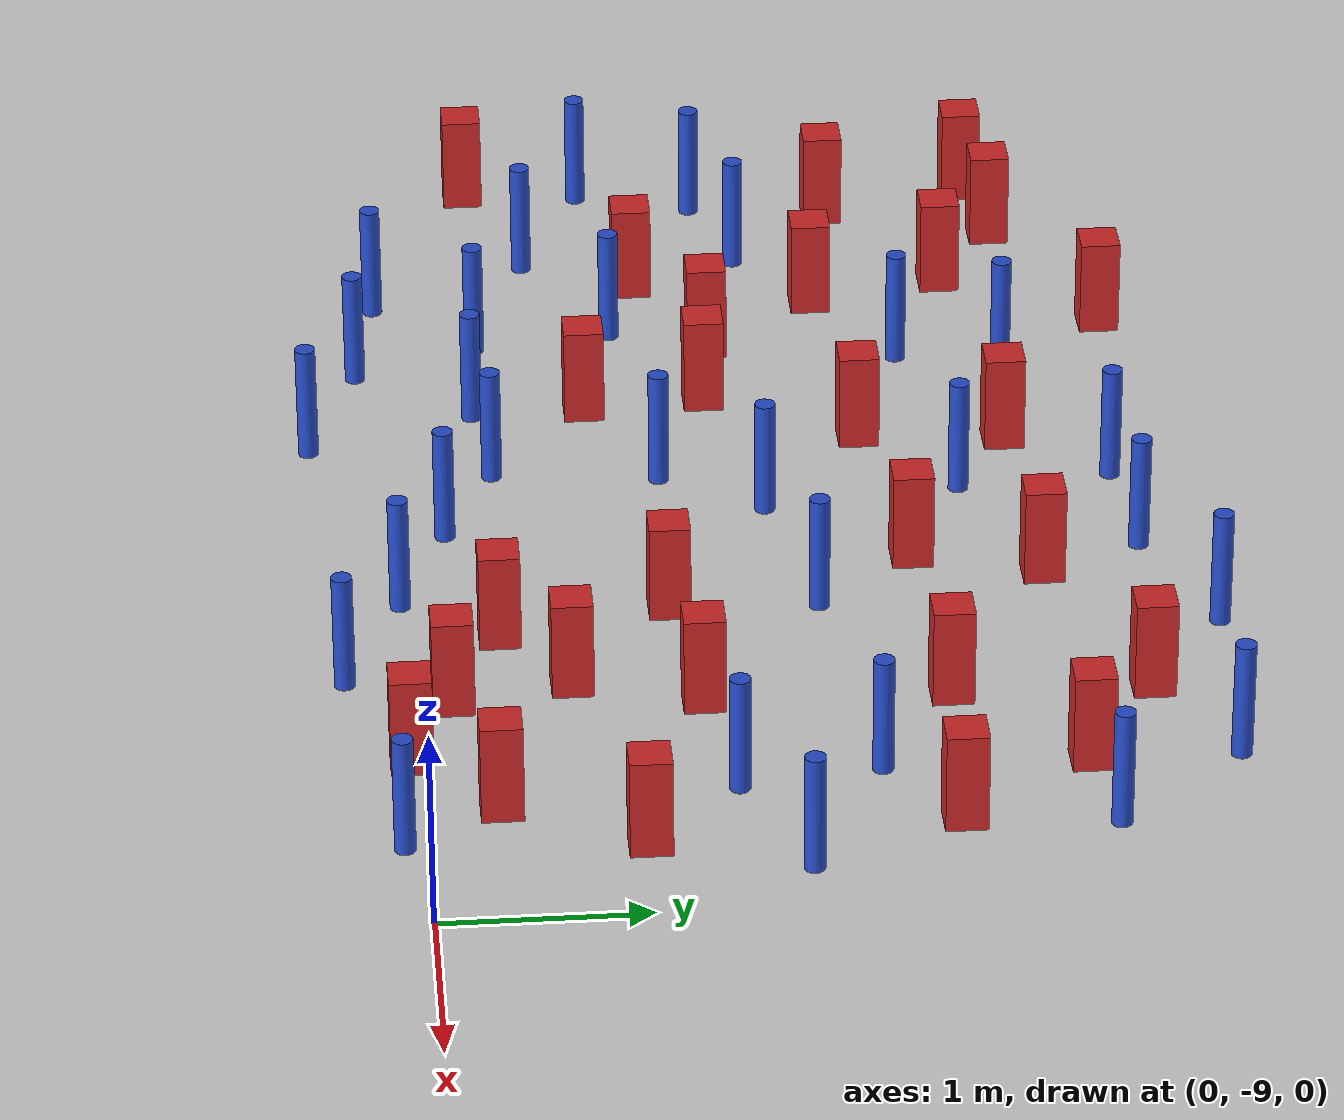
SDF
<sdf version="1.6">
 <world name="default">
  <model name="ground_plane">
   <static>1</static>
   <link name="link">
    <collision name="collision">
     <geometry><plane><normal>0 0 1</normal><size>100 100</size></plane></geometry>
     <surface><friction><ode><mu>100</mu><mu2>50</mu2></ode></friction></surface>
    </collision>
    <visual name="visual">
     <cast_shadows>0</cast_shadows>
     <geometry><plane><normal>0 0 1</normal><size>100 100</size></plane></geometry>
     <material>
      <ambient>1.0 1.0 1.0 1.0</ambient>
      <diffuse>0.8 0.8 0.8 1.0</diffuse>
      <specular>0.01 0.01 0.01 1.000000</specular>
     </material>
    </visual>
   </link>
  </model>
  <model name="pole_obstacle0">
   <static>true</static>
   <pose>-3.49918072226 -7.20875077813 -9.4761961606e-06 5.49618799729e-07 2.36310414006e-07 -1.55090534822e-07</pose>
   <link name="link">
    <pose>0 0 0.3 0 -0 0</pose>
    <inertial>
     <mass>1</mass>
     <inertia><ixx>0.145833</ixx><ixy>0</ixy><ixz>0</ixz><iyy>0.145833</iyy><iyz>0</iyz><izz>0.125</izz></inertia>
    </inertial>
    <collision name="collision">
     <geometry><cylinder><radius>0.05</radius><length>.6</length></cylinder></geometry>
    </collision>
    <visual name="visual">
     <geometry><cylinder><radius>0.05</radius><length>.6</length></cylinder></geometry>
     <material>
      <script><name>Gazebo/Blue</name><uri>file://media/materials/scripts/gazebo.material</uri></script>
     </material>
    </visual>
   </link>
  </model>
  <model name="square_post_obstacle3">
   <static>true</static>
   <pose>-1.09705716129 -5.88747657592 -6.11067671241e-07 -5.50515727128e-06 -8.79689657224e-07 2.37013304536e-05</pose>
   <link name="link">
    <pose>0 0 0.25 0 -0 0</pose>
    <inertial>
     <mass>100</mass>
     <inertia>
      <ixx>0.166667</ixx>
      <ixy>0</ixy>
      <ixz>0</ixz>
      <iyy>0.166667</iyy>
      <iyz>0</iyz>
      <izz>0.166667</izz>
     </inertia>
    </inertial>
    <collision name="collision"><geometry><box><size>.2 .2 .5</size></box></geometry></collision>
    <visual name="visual">
     <geometry><box><size>.2 .2 .5</size></box></geometry>
     <material>
      <script><name>Gazebo/Red</name><uri>file://media/materials/scripts/gazebo.material</uri></script>
     </material>
    </visual>
   </link>
  </model>
  <model name="square_post_obstacle18">
   <static>true</static>
   <pose>-1.74905693073 -7.65027049978 -6.11067671241e-07 -5.50515727128e-06 -8.79689657224e-07 2.37013304536e-05</pose>
   <link name="link">
    <pose>0 0 0.25 0 -0 0</pose>
    <inertial>
     <mass>100</mass>
     <inertia>
      <ixx>0.166667</ixx>
      <ixy>0</ixy>
      <ixz>0</ixz>
      <iyy>0.166667</iyy>
      <iyz>0</iyz>
      <izz>0.166667</izz>
     </inertia>
    </inertial>
    <collision name="collision"><geometry><box><size>.2 .2 .5</size></box></geometry></collision>
    <visual name="visual">
     <geometry><box><size>.2 .2 .5</size></box></geometry>
     <material>
      <script><name>Gazebo/Red</name><uri>file://media/materials/scripts/gazebo.material</uri></script>
     </material>
    </visual>
   </link>
  </model>
  <model name="pole_obstacle11">
   <static>true</static>
   <pose>-3.36605365062 -8.79747036857 -9.4761961606e-06 5.49618799729e-07 2.36310414e-07 -1.55090534824e-07</pose>
   <link name="link">
    <pose>0 0 0.3 0 -0 0</pose>
    <inertial>
     <mass>1</mass>
     <inertia><ixx>0.145833</ixx><ixy>0</ixy><ixz>0</ixz><iyy>0.145833</iyy><iyz>0</iyz><izz>0.125</izz></inertia>
    </inertial>
    <collision name="collision">
     <geometry><cylinder><radius>0.05</radius><length>.6</length></cylinder></geometry>
    </collision>
    <visual name="visual">
     <geometry><cylinder><radius>0.05</radius><length>.6</length></cylinder></geometry>
     <material>
      <script><name>Gazebo/Blue</name><uri>file://media/materials/scripts/gazebo.material</uri></script>
     </material>
    </visual>
   </link>
  </model>
  <model name="square_post_obstacle22">
   <static>true</static>
   <pose>-1.94078249601 -8.26108704819 -6.11067671241e-07 -5.50515727128e-06 -8.79689657224e-07 2.37013304536e-05</pose>
   <link name="link">
    <pose>0 0 0.25 0 -0 0</pose>
    <inertial>
     <mass>100</mass>
     <inertia>
      <ixx>0.166667</ixx>
      <ixy>0</ixy>
      <ixz>0</ixz>
      <iyy>0.166667</iyy>
      <iyz>0</iyz>
      <izz>0.166667</izz>
     </inertia>
    </inertial>
    <collision name="collision"><geometry><box><size>.2 .2 .5</size></box></geometry></collision>
    <visual name="visual">
     <geometry><box><size>.2 .2 .5</size></box></geometry>
     <material>
      <script><name>Gazebo/Red</name><uri>file://media/materials/scripts/gazebo.material</uri></script>
     </material>
    </visual>
   </link>
  </model>
  <model name="pole_obstacle17">
   <static>true</static>
   <pose>-0.306698470131 -7.25626513616 -9.47619616065e-06 5.49618799737e-07 2.36310414065e-07 -1.55090534796e-07</pose>
   <link name="link">
    <pose>0 0 0.3 0 -0 0</pose>
    <inertial>
     <mass>1</mass>
     <inertia><ixx>0.145833</ixx><ixy>0</ixy><ixz>0</ixz><iyy>0.145833</iyy><iyz>0</iyz><izz>0.125</izz></inertia>
    </inertial>
    <collision name="collision">
     <geometry><cylinder><radius>0.05</radius><length>.6</length></cylinder></geometry>
    </collision>
    <visual name="visual">
     <geometry><cylinder><radius>0.05</radius><length>.6</length></cylinder></geometry>
     <material>
      <script><name>Gazebo/Blue</name><uri>file://media/materials/scripts/gazebo.material</uri></script>
     </material>
    </visual>
   </link>
  </model>
  <model name="square_post_obstacle29">
   <static>true</static>
   <pose>-1.72242466137 -6.47656876961 -6.11067671241e-07 -5.50515727128e-06 -8.79689657224e-07 2.37013304536e-05</pose>
   <link name="link">
    <pose>0 0 0.25 0 -0 0</pose>
    <inertial>
     <mass>100</mass>
     <inertia>
      <ixx>0.166667</ixx>
      <ixy>0</ixy>
      <ixz>0</ixz>
      <iyy>0.166667</iyy>
      <iyz>0</iyz>
      <izz>0.166667</izz>
     </inertia>
    </inertial>
    <collision name="collision"><geometry><box><size>.2 .2 .5</size></box></geometry></collision>
    <visual name="visual">
     <geometry><box><size>.2 .2 .5</size></box></geometry>
     <material>
      <script><name>Gazebo/Red</name><uri>file://media/materials/scripts/gazebo.material</uri></script>
     </material>
    </visual>
   </link>
  </model>
  <model name="pole_obstacle21">
   <static>true</static>
   <pose>-2.26865718397 -5.11595533097 -9.47619616065e-06 5.49618799738e-07 2.3631041406e-07 -1.55090534801e-07</pose>
   <link name="link">
    <pose>0 0 0.3 0 -0 0</pose>
    <inertial>
     <mass>1</mass>
     <inertia><ixx>0.145833</ixx><ixy>0</ixy><ixz>0</ixz><iyy>0.145833</iyy><iyz>0</iyz><izz>0.125</izz></inertia>
    </inertial>
    <collision name="collision">
     <geometry><cylinder><radius>0.05</radius><length>.6</length></cylinder></geometry>
    </collision>
    <visual name="visual">
     <geometry><cylinder><radius>0.05</radius><length>.6</length></cylinder></geometry>
     <material>
      <script><name>Gazebo/Blue</name><uri>file://media/materials/scripts/gazebo.material</uri></script>
     </material>
    </visual>
   </link>
  </model>
  <model name="pole_obstacle27">
   <static>true</static>
   <pose>-3.92677114242 -8.53844583566 -9.47619616065e-06 5.49618799738e-07 2.36310414059e-07 -1.55090534802e-07</pose>
   <link name="link">
    <pose>0 0 0.3 0 -0 0</pose>
    <inertial>
     <mass>1</mass>
     <inertia><ixx>0.145833</ixx><ixy>0</ixy><ixz>0</ixz><iyy>0.145833</iyy><iyz>0</iyz><izz>0.125</izz></inertia>
    </inertial>
    <collision name="collision">
     <geometry><cylinder><radius>0.05</radius><length>.6</length></cylinder></geometry>
    </collision>
    <visual name="visual">
     <geometry><cylinder><radius>0.05</radius><length>.6</length></cylinder></geometry>
     <material>
      <script><name>Gazebo/Blue</name><uri>file://media/materials/scripts/gazebo.material</uri></script>
     </material>
    </visual>
   </link>
  </model>
  <model name="square_post_obstacle33">
   <static>true</static>
   <pose>-5.73442985995 -6.11109160787 -6.11067671241e-07 -5.50515727128e-06 -8.79689657224e-07 2.37013304536e-05</pose>
   <link name="link">
    <pose>0 0 0.25 0 -0 0</pose>
    <inertial>
     <mass>100</mass>
     <inertia>
      <ixx>0.166667</ixx>
      <ixy>0</ixy>
      <ixz>0</ixz>
      <iyy>0.166667</iyy>
      <iyz>0</iyz>
      <izz>0.166667</izz>
     </inertia>
    </inertial>
    <collision name="collision"><geometry><box><size>.2 .2 .5</size></box></geometry></collision>
    <visual name="visual">
     <geometry><box><size>.2 .2 .5</size></box></geometry>
     <material>
      <script><name>Gazebo/Red</name><uri>file://media/materials/scripts/gazebo.material</uri></script>
     </material>
    </visual>
   </link>
  </model>
  <model name="pole_obstacle31">
   <static>true</static>
   <pose>-0.994104762359 -7.53979150934 -9.47619616065e-06 5.49618799737e-07 2.36310414066e-07 -1.55090534796e-07</pose>
   <link name="link">
    <pose>0 0 0.3 0 -0 0</pose>
    <inertial>
     <mass>1</mass>
     <inertia><ixx>0.145833</ixx><ixy>0</ixy><ixz>0</ixz><iyy>0.145833</iyy><iyz>0</iyz><izz>0.125</izz></inertia>
    </inertial>
    <collision name="collision">
     <geometry><cylinder><radius>0.05</radius><length>.6</length></cylinder></geometry>
    </collision>
    <visual name="visual">
     <geometry><cylinder><radius>0.05</radius><length>.6</length></cylinder></geometry>
     <material>
      <script><name>Gazebo/Blue</name><uri>file://media/materials/scripts/gazebo.material</uri></script>
     </material>
    </visual>
   </link>
  </model>
  <model name="square_post_obstacle37">
   <static>true</static>
   <pose>-1.3314582392 -9.04635454196 -6.11067671241e-07 -5.50515727128e-06 -8.79689657224e-07 2.37013304536e-05</pose>
   <link name="link">
    <pose>0 0 0.25 0 -0 0</pose>
    <inertial>
     <mass>100</mass>
     <inertia>
      <ixx>0.166667</ixx>
      <ixy>0</ixy>
      <ixz>0</ixz>
      <iyy>0.166667</iyy>
      <iyz>0</iyz>
      <izz>0.166667</izz>
     </inertia>
    </inertial>
    <collision name="collision"><geometry><box><size>.2 .2 .5</size></box></geometry></collision>
    <visual name="visual">
     <geometry><box><size>.2 .2 .5</size></box></geometry>
     <material>
      <script><name>Gazebo/Red</name><uri>file://media/materials/scripts/gazebo.material</uri></script>
     </material>
    </visual>
   </link>
  </model>
  <model name="pole_obstacle37">
   <static>true</static>
   <pose>-1.10082756111 -6.86402479381 -9.47619616065e-06 5.49618799737e-07 2.36310414061e-07 -1.550905348e-07</pose>
   <link name="link">
    <pose>0 0 0.3 0 -0 0</pose>
    <inertial>
     <mass>1</mass>
     <inertia><ixx>0.145833</ixx><ixy>0</ixy><ixz>0</ixz><iyy>0.145833</iyy><iyz>0</iyz><izz>0.125</izz></inertia>
    </inertial>
    <collision name="collision">
     <geometry><cylinder><radius>0.05</radius><length>.6</length></cylinder></geometry>
    </collision>
    <visual name="visual">
     <geometry><cylinder><radius>0.05</radius><length>.6</length></cylinder></geometry>
     <material>
      <script><name>Gazebo/Blue</name><uri>file://media/materials/scripts/gazebo.material</uri></script>
     </material>
    </visual>
   </link>
  </model>
  <model name="pole_obstacle42">
   <static>true</static>
   <pose>-6.80712507629 -7.94153446719 -9.47619616065e-06 5.49618799737e-07 2.36310414037e-07 -1.55090534814e-07</pose>
   <link name="link">
    <pose>0 0 0.3 0 -0 0</pose>
    <inertial>
     <mass>1</mass>
     <inertia><ixx>0.145833</ixx><ixy>0</ixy><ixz>0</ixz><iyy>0.145833</iyy><iyz>0</iyz><izz>0.125</izz></inertia>
    </inertial>
    <collision name="collision">
     <geometry><cylinder><radius>0.05</radius><length>.6</length></cylinder></geometry>
    </collision>
    <visual name="visual">
     <geometry><cylinder><radius>0.05</radius><length>.6</length></cylinder></geometry>
     <material>
      <script><name>Gazebo/Blue</name><uri>file://media/materials/scripts/gazebo.material</uri></script>
     </material>
    </visual>
   </link>
  </model>
  <model name="pole_obstacle48">
   <static>true</static>
   <pose>-2.57053318035 -7.02526370637 -9.47619616065e-06 5.49618799738e-07 2.3631041406e-07 -1.55090534801e-07</pose>
   <link name="link">
    <pose>0 0 0.3 0 -0 0</pose>
    <inertial>
     <mass>1</mass>
     <inertia><ixx>0.145833</ixx><ixy>0</ixy><ixz>0</ixz><iyy>0.145833</iyy><iyz>0</iyz><izz>0.125</izz></inertia>
    </inertial>
    <collision name="collision">
     <geometry><cylinder><radius>0.05</radius><length>.6</length></cylinder></geometry>
    </collision>
    <visual name="visual">
     <geometry><cylinder><radius>0.05</radius><length>.6</length></cylinder></geometry>
     <material>
      <script><name>Gazebo/Blue</name><uri>file://media/materials/scripts/gazebo.material</uri></script>
     </material>
    </visual>
   </link>
  </model>
  <model name="pole_obstacle49">
   <static>true</static>
   <pose>-2.04245353863 -9.33295723098 -9.47619616065e-06 5.49618799737e-07 2.3631041404e-07 -1.55090534812e-07</pose>
   <link name="link">
    <pose>0 0 0.3 0 -0 0</pose>
    <inertial>
     <mass>1</mass>
     <inertia><ixx>0.145833</ixx><ixy>0</ixy><ixz>0</ixz><iyy>0.145833</iyy><iyz>0</iyz><izz>0.125</izz></inertia>
    </inertial>
    <collision name="collision">
     <geometry><cylinder><radius>0.05</radius><length>.6</length></cylinder></geometry>
    </collision>
    <visual name="visual">
     <geometry><cylinder><radius>0.05</radius><length>.6</length></cylinder></geometry>
     <material>
      <script><name>Gazebo/Blue</name><uri>file://media/materials/scripts/gazebo.material</uri></script>
     </material>
    </visual>
   </link>
  </model>
  <model name="pole_obstacle55">
   <static>true</static>
   <pose>-6.0405353313 -7.16022130333 -9.47619616065e-06 5.49618799737e-07 2.36310414037e-07 -1.55090534814e-07</pose>
   <link name="link">
    <pose>0 0 0.3 0 -0 0</pose>
    <inertial>
     <mass>1</mass>
     <inertia><ixx>0.145833</ixx><ixy>0</ixy><ixz>0</ixz><iyy>0.145833</iyy><iyz>0</iyz><izz>0.125</izz></inertia>
    </inertial>
    <collision name="collision">
     <geometry><cylinder><radius>0.05</radius><length>.6</length></cylinder></geometry>
    </collision>
    <visual name="visual">
     <geometry><cylinder><radius>0.05</radius><length>.6</length></cylinder></geometry>
     <material>
      <script><name>Gazebo/Blue</name><uri>file://media/materials/scripts/gazebo.material</uri></script>
     </material>
    </visual>
   </link>
  </model>
  <model name="square_post_obstacle59">
   <static>true</static>
   <pose>-2.78216928235 -5.91564025048 -6.11067671241e-07 -5.50515727128e-06 -8.79689657224e-07 2.37013304536e-05</pose>
   <link name="link">
    <pose>0 0 0.25 0 -0 0</pose>
    <inertial>
     <mass>100</mass>
     <inertia>
      <ixx>0.166667</ixx>
      <ixy>0</ixy>
      <ixz>0</ixz>
      <iyy>0.166667</iyy>
      <iyz>0</iyz>
      <izz>0.166667</izz>
     </inertia>
    </inertial>
    <collision name="collision"><geometry><box><size>.2 .2 .5</size></box></geometry></collision>
    <visual name="visual">
     <geometry><box><size>.2 .2 .5</size></box></geometry>
     <material>
      <script><name>Gazebo/Red</name><uri>file://media/materials/scripts/gazebo.material</uri></script>
     </material>
    </visual>
   </link>
  </model>
  <model name="square_post_obstacle61">
   <static>true</static>
   <pose>-6.52243029073 -6.65120590592 -6.11067671241e-07 -5.50515727128e-06 -8.79689657224e-07 2.37013304536e-05</pose>
   <link name="link">
    <pose>0 0 0.25 0 -0 0</pose>
    <inertial>
     <mass>100</mass>
     <inertia>
      <ixx>0.166667</ixx>
      <ixy>0</ixy>
      <ixz>0</ixz>
      <iyy>0.166667</iyy>
      <iyz>0</iyz>
      <izz>0.166667</izz>
     </inertia>
    </inertial>
    <collision name="collision"><geometry><box><size>.2 .2 .5</size></box></geometry></collision>
    <visual name="visual">
     <geometry><box><size>.2 .2 .5</size></box></geometry>
     <material>
      <script><name>Gazebo/Red</name><uri>file://media/materials/scripts/gazebo.material</uri></script>
     </material>
    </visual>
   </link>
  </model>
  <model name="square_post_obstacle68">
   <static>true</static>
   <pose>-2.97871177013 -6.53663000491 -6.11067671241e-07 -5.50515727128e-06 -8.79689657224e-07 2.37013304536e-05</pose>
   <link name="link">
    <pose>0 0 0.25 0 -0 0</pose>
    <inertial>
     <mass>100</mass>
     <inertia>
      <ixx>0.166667</ixx>
      <ixy>0</ixy>
      <ixz>0</ixz>
      <iyy>0.166667</iyy>
      <iyz>0</iyz>
      <izz>0.166667</izz>
     </inertia>
    </inertial>
    <collision name="collision"><geometry><box><size>.2 .2 .5</size></box></geometry></collision>
    <visual name="visual">
     <geometry><box><size>.2 .2 .5</size></box></geometry>
     <material>
      <script><name>Gazebo/Red</name><uri>file://media/materials/scripts/gazebo.material</uri></script>
     </material>
    </visual>
   </link>
  </model>
  <model name="pole_obstacle66">
   <static>true</static>
   <pose>-6.63145646368 -7.34762590784 -9.47619616065e-06 5.49618799737e-07 2.36310414037e-07 -1.55090534814e-07</pose>
   <link name="link">
    <pose>0 0 0.3 0 -0 0</pose>
    <inertial>
     <mass>1</mass>
     <inertia><ixx>0.145833</ixx><ixy>0</ixy><ixz>0</ixz><iyy>0.145833</iyy><iyz>0</iyz><izz>0.125</izz></inertia>
    </inertial>
    <collision name="collision">
     <geometry><cylinder><radius>0.05</radius><length>.6</length></cylinder></geometry>
    </collision>
    <visual name="visual">
     <geometry><cylinder><radius>0.05</radius><length>.6</length></cylinder></geometry>
     <material>
      <script><name>Gazebo/Blue</name><uri>file://media/materials/scripts/gazebo.material</uri></script>
     </material>
    </visual>
   </link>
  </model>
  <model name="square_post_obstacle71">
   <static>true</static>
   <pose>-0.90117295582 -8.64934643393 -6.11067671241e-07 -5.50515727128e-06 -8.79689657224e-07 2.37013304536e-05</pose>
   <link name="link">
    <pose>0 0 0.25 0 -0 0</pose>
    <inertial>
     <mass>100</mass>
     <inertia>
      <ixx>0.166667</ixx>
      <ixy>0</ixy>
      <ixz>0</ixz>
      <iyy>0.166667</iyy>
      <iyz>0</iyz>
      <izz>0.166667</izz>
     </inertia>
    </inertial>
    <collision name="collision"><geometry><box><size>.2 .2 .5</size></box></geometry></collision>
    <visual name="visual">
     <geometry><box><size>.2 .2 .5</size></box></geometry>
     <material>
      <script><name>Gazebo/Red</name><uri>file://media/materials/scripts/gazebo.material</uri></script>
     </material>
    </visual>
   </link>
  </model>
  <model name="square_post_obstacle74">
   <static>true</static>
   <pose>-5.13575304831 -7.37541045319 -6.11067671241e-07 -5.50515727128e-06 -8.79689657224e-07 2.37013304536e-05</pose>
   <link name="link">
    <pose>0 0 0.25 0 -0 0</pose>
    <inertial>
     <mass>100</mass>
     <inertia>
      <ixx>0.166667</ixx>
      <ixy>0</ixy>
      <ixz>0</ixz>
      <iyy>0.166667</iyy>
      <iyz>0</iyz>
      <izz>0.166667</izz>
     </inertia>
    </inertial>
    <collision name="collision"><geometry><box><size>.2 .2 .5</size></box></geometry></collision>
    <visual name="visual">
     <geometry><box><size>.2 .2 .5</size></box></geometry>
     <material>
      <script><name>Gazebo/Red</name><uri>file://media/materials/scripts/gazebo.material</uri></script>
     </material>
    </visual>
   </link>
  </model>
  <model name="pole_obstacle81">
   <static>true</static>
   <pose>-3.00636888263 -5.41291909832 -9.4761961606e-06 5.49618799729e-07 2.36310414006e-07 -1.55090534822e-07</pose>
   <link name="link">
    <pose>0 0 0.3 0 -0 0</pose>
    <inertial>
     <mass>1</mass>
     <inertia><ixx>0.145833</ixx><ixy>0</ixy><ixz>0</ixz><iyy>0.145833</iyy><iyz>0</iyz><izz>0.125</izz></inertia>
    </inertial>
    <collision name="collision">
     <geometry><cylinder><radius>0.05</radius><length>.6</length></cylinder></geometry>
    </collision>
    <visual name="visual">
     <geometry><cylinder><radius>0.05</radius><length>.6</length></cylinder></geometry>
     <material>
      <script><name>Gazebo/Blue</name><uri>file://media/materials/scripts/gazebo.material</uri></script>
     </material>
    </visual>
   </link>
  </model>
  <model name="pole_obstacle82">
   <static>true</static>
   <pose>-5.30800464182 -7.86222749837 -9.47619616065e-06 5.49618799737e-07 2.36310414037e-07 -1.55090534814e-07</pose>
   <link name="link">
    <pose>0 0 0.3 0 -0 0</pose>
    <inertial>
     <mass>1</mass>
     <inertia><ixx>0.145833</ixx><ixy>0</ixy><ixz>0</ixz><iyy>0.145833</iyy><iyz>0</iyz><izz>0.125</izz></inertia>
    </inertial>
    <collision name="collision">
     <geometry><cylinder><radius>0.05</radius><length>.6</length></cylinder></geometry>
    </collision>
    <visual name="visual">
     <geometry><cylinder><radius>0.05</radius><length>.6</length></cylinder></geometry>
     <material>
      <script><name>Gazebo/Blue</name><uri>file://media/materials/scripts/gazebo.material</uri></script>
     </material>
    </visual>
   </link>
  </model>
  <model name="pole_obstacle85">
   <static>true</static>
   <pose>-1.09104139491 -5.1828774682 -9.47619616065e-06 5.49618799737e-07 2.36310414061e-07 -1.550905348e-07</pose>
   <link name="link">
    <pose>0 0 0.3 0 -0 0</pose>
    <inertial>
     <mass>1</mass>
     <inertia><ixx>0.145833</ixx><ixy>0</ixy><ixz>0</ixz><iyy>0.145833</iyy><iyz>0</iyz><izz>0.125</izz></inertia>
    </inertial>
    <collision name="collision">
     <geometry><cylinder><radius>0.05</radius><length>.6</length></cylinder></geometry>
    </collision>
    <visual name="visual">
     <geometry><cylinder><radius>0.05</radius><length>.6</length></cylinder></geometry>
     <material>
      <script><name>Gazebo/Blue</name><uri>file://media/materials/scripts/gazebo.material</uri></script>
     </material>
    </visual>
   </link>
  </model>
  <model name="square_post_obstacle84">
   <static>true</static>
   <pose>-4.5393418222 -8.0414050445 -6.11067671241e-07 -5.50515727128e-06 -8.79689657224e-07 2.37013304536e-05</pose>
   <link name="link">
    <pose>0 0 0.25 0 -0 0</pose>
    <inertial>
     <mass>100</mass>
     <inertia>
      <ixx>0.166667</ixx>
      <ixy>0</ixy>
      <ixz>0</ixz>
      <iyy>0.166667</iyy>
      <iyz>0</iyz>
      <izz>0.166667</izz>
     </inertia>
    </inertial>
    <collision name="collision"><geometry><box><size>.2 .2 .5</size></box></geometry></collision>
    <visual name="visual">
     <geometry><box><size>.2 .2 .5</size></box></geometry>
     <material>
      <script><name>Gazebo/Red</name><uri>file://media/materials/scripts/gazebo.material</uri></script>
     </material>
    </visual>
   </link>
  </model>
  <model name="square_post_obstacle90">
   <static>true</static>
   <pose>-2.59946776797 -7.75162973083 -6.11067671241e-07 -5.50515727128e-06 -8.79689657224e-07 2.37013304536e-05</pose>
   <link name="link">
    <pose>0 0 0.25 0 -0 0</pose>
    <inertial>
     <mass>100</mass>
     <inertia>
      <ixx>0.166667</ixx>
      <ixy>0</ixy>
      <ixz>0</ixz>
      <iyy>0.166667</iyy>
      <iyz>0</iyz>
      <izz>0.166667</izz>
     </inertia>
    </inertial>
    <collision name="collision"><geometry><box><size>.2 .2 .5</size></box></geometry></collision>
    <visual name="visual">
     <geometry><box><size>.2 .2 .5</size></box></geometry>
     <material>
      <script><name>Gazebo/Red</name><uri>file://media/materials/scripts/gazebo.material</uri></script>
     </material>
    </visual>
   </link>
  </model>
  <model name="square_post_obstacle92">
   <static>true</static>
   <pose>-0.647881133765 -6.53299068754 -6.11067671241e-07 -5.50515727128e-06 -8.79689657224e-07 2.37013304536e-05</pose>
   <link name="link">
    <pose>0 0 0.25 0 -0 0</pose>
    <inertial>
     <mass>100</mass>
     <inertia>
      <ixx>0.166667</ixx>
      <ixy>0</ixy>
      <ixz>0</ixz>
      <iyy>0.166667</iyy>
      <iyz>0</iyz>
      <izz>0.166667</izz>
     </inertia>
    </inertial>
    <collision name="collision"><geometry><box><size>.2 .2 .5</size></box></geometry></collision>
    <visual name="visual">
     <geometry><box><size>.2 .2 .5</size></box></geometry>
     <material>
      <script><name>Gazebo/Red</name><uri>file://media/materials/scripts/gazebo.material</uri></script>
     </material>
    </visual>
   </link>
  </model>
  <model name="pole_obstacle130">
   <static>true</static>
   <pose>-4.96790477257 -9.18235946005 -9.47619616065e-06 5.49618799737e-07 2.36310414065e-07 -1.55090534796e-07</pose>
   <link name="link">
    <pose>0 0 0.3 0 -0 0</pose>
    <inertial>
     <mass>1</mass>
     <inertia><ixx>0.145833</ixx><ixy>0</ixy><ixz>0</ixz><iyy>0.145833</iyy><iyz>0</iyz><izz>0.125</izz></inertia>
    </inertial>
    <collision name="collision">
     <geometry><cylinder><radius>0.05</radius><length>.6</length></cylinder></geometry>
    </collision>
    <visual name="visual">
     <geometry><cylinder><radius>0.05</radius><length>.6</length></cylinder></geometry>
     <material>
      <script><name>Gazebo/Blue</name><uri>file://media/materials/scripts/gazebo.material</uri></script>
     </material>
    </visual>
   </link>
  </model>
  <model name="pole_obstacle131">
   <static>true</static>
   <pose>-0.560774748881 -5.81527238266 -9.47619616065e-06 5.49618799737e-07 2.36310414065e-07 -1.55090534796e-07</pose>
   <link name="link">
    <pose>0 0 0.3 0 -0 0</pose>
    <inertial>
     <mass>1</mass>
     <inertia><ixx>0.145833</ixx><ixy>0</ixy><ixz>0</ixz><iyy>0.145833</iyy><iyz>0</iyz><izz>0.125</izz></inertia>
    </inertial>
    <collision name="collision">
     <geometry><cylinder><radius>0.05</radius><length>.6</length></cylinder></geometry>
    </collision>
    <visual name="visual">
     <geometry><cylinder><radius>0.05</radius><length>.6</length></cylinder></geometry>
     <material>
      <script><name>Gazebo/Blue</name><uri>file://media/materials/scripts/gazebo.material</uri></script>
     </material>
    </visual>
   </link>
  </model>
  <model name="square_post_obstacle124">
   <static>true</static>
   <pose>-1.82152389845 -8.83004007291 -6.11067671241e-07 -5.50515727128e-06 -8.79689657224e-07 2.37013304536e-05</pose>
   <link name="link">
    <pose>0 0 0.25 0 -0 0</pose>
    <inertial>
     <mass>100</mass>
     <inertia>
      <ixx>0.166667</ixx>
      <ixy>0</ixy>
      <ixz>0</ixz>
      <iyy>0.166667</iyy>
      <iyz>0</iyz>
      <izz>0.166667</izz>
     </inertia>
    </inertial>
    <collision name="collision"><geometry><box><size>.2 .2 .5</size></box></geometry></collision>
    <visual name="visual">
     <geometry><box><size>.2 .2 .5</size></box></geometry>
     <material>
      <script><name>Gazebo/Red</name><uri>file://media/materials/scripts/gazebo.material</uri></script>
     </material>
    </visual>
   </link>
  </model>
  <model name="pole_obstacle140">
   <static>true</static>
   <pose>-3.62524837412 -6.23453616258 -9.47619616065e-06 5.49618799738e-07 2.3631041406e-07 -1.55090534801e-07</pose>
   <link name="link">
    <pose>0 0 0.3 0 -0 0</pose>
    <inertial>
     <mass>1</mass>
     <inertia><ixx>0.145833</ixx><ixy>0</ixy><ixz>0</ixz><iyy>0.145833</iyy><iyz>0</iyz><izz>0.125</izz></inertia>
    </inertial>
    <collision name="collision">
     <geometry><cylinder><radius>0.05</radius><length>.6</length></cylinder></geometry>
    </collision>
    <visual name="visual">
     <geometry><cylinder><radius>0.05</radius><length>.6</length></cylinder></geometry>
     <material>
      <script><name>Gazebo/Blue</name><uri>file://media/materials/scripts/gazebo.material</uri></script>
     </material>
    </visual>
   </link>
  </model>
  <model name="square_post_obstacle130">
   <static>true</static>
   <pose>-6.87190653595 -8.54420832813 -6.11067671241e-07 -5.50515727128e-06 -8.79689657224e-07 2.37013304536e-05</pose>
   <link name="link">
    <pose>0 0 0.25 0 -0 0</pose>
    <inertial>
     <mass>100</mass>
     <inertia>
      <ixx>0.166667</ixx>
      <ixy>0</ixy>
      <ixz>0</ixz>
      <iyy>0.166667</iyy>
      <iyz>0</iyz>
      <izz>0.166667</izz>
     </inertia>
    </inertial>
    <collision name="collision"><geometry><box><size>.2 .2 .5</size></box></geometry></collision>
    <visual name="visual">
     <geometry><box><size>.2 .2 .5</size></box></geometry>
     <material>
      <script><name>Gazebo/Red</name><uri>file://media/materials/scripts/gazebo.material</uri></script>
     </material>
    </visual>
   </link>
  </model>
  <model name="pole_obstacle144">
   <static>true</static>
   <pose>-4.84969400202 -5.88359008276 -9.47619616065e-06 5.49618799737e-07 2.36310414037e-07 -1.55090534814e-07</pose>
   <link name="link">
    <pose>0 0 0.3 0 -0 0</pose>
    <inertial>
     <mass>1</mass>
     <inertia><ixx>0.145833</ixx><ixy>0</ixy><ixz>0</ixz><iyy>0.145833</iyy><iyz>0</iyz><izz>0.125</izz></inertia>
    </inertial>
    <collision name="collision">
     <geometry><cylinder><radius>0.05</radius><length>.6</length></cylinder></geometry>
    </collision>
    <visual name="visual">
     <geometry><cylinder><radius>0.05</radius><length>.6</length></cylinder></geometry>
     <material>
      <script><name>Gazebo/Blue</name><uri>file://media/materials/scripts/gazebo.material</uri></script>
     </material>
    </visual>
   </link>
  </model>
  <model name="square_post_obstacle150">
   <static>true</static>
   <pose>-4.16534132147 -6.6854469114 -6.11067671241e-07 -5.50515727128e-06 -8.79689657224e-07 2.37013304536e-05</pose>
   <link name="link">
    <pose>0 0 0.25 0 -0 0</pose>
    <inertial>
     <mass>100</mass>
     <inertia>
      <ixx>0.166667</ixx>
      <ixy>0</ixy>
      <ixz>0</ixz>
      <iyy>0.166667</iyy>
      <iyz>0</iyz>
      <izz>0.166667</izz>
     </inertia>
    </inertial>
    <collision name="collision"><geometry><box><size>.2 .2 .5</size></box></geometry></collision>
    <visual name="visual">
     <geometry><box><size>.2 .2 .5</size></box></geometry>
     <material>
      <script><name>Gazebo/Red</name><uri>file://media/materials/scripts/gazebo.material</uri></script>
     </material>
    </visual>
   </link>
  </model>
  <model name="pole_obstacle158">
   <static>true</static>
   <pose>-6.0643140147 -8.27224269316 -9.47619616065e-06 5.49618799737e-07 2.36310414065e-07 -1.55090534796e-07</pose>
   <link name="link">
    <pose>0 0 0.3 0 -0 0</pose>
    <inertial>
     <mass>1</mass>
     <inertia><ixx>0.145833</ixx><ixy>0</ixy><ixz>0</ixz><iyy>0.145833</iyy><iyz>0</iyz><izz>0.125</izz></inertia>
    </inertial>
    <collision name="collision">
     <geometry><cylinder><radius>0.05</radius><length>.6</length></cylinder></geometry>
    </collision>
    <visual name="visual">
     <geometry><cylinder><radius>0.05</radius><length>.6</length></cylinder></geometry>
     <material>
      <script><name>Gazebo/Blue</name><uri>file://media/materials/scripts/gazebo.material</uri></script>
     </material>
    </visual>
   </link>
  </model>
  <model name="pole_obstacle165">
   <static>true</static>
   <pose>-5.21793365199 -8.56134940215 -9.47619616065e-06 5.49618799737e-07 2.36310414065e-07 -1.55090534796e-07</pose>
   <link name="link">
    <pose>0 0 0.3 0 -0 0</pose>
    <inertial>
     <mass>1</mass>
     <inertia><ixx>0.145833</ixx><ixy>0</ixy><ixz>0</ixz><iyy>0.145833</iyy><iyz>0</iyz><izz>0.125</izz></inertia>
    </inertial>
    <collision name="collision">
     <geometry><cylinder><radius>0.05</radius><length>.6</length></cylinder></geometry>
    </collision>
    <visual name="visual">
     <geometry><cylinder><radius>0.05</radius><length>.6</length></cylinder></geometry>
     <material>
      <script><name>Gazebo/Blue</name><uri>file://media/materials/scripts/gazebo.material</uri></script>
     </material>
    </visual>
   </link>
  </model>
  <model name="square_post_obstacle159">
   <static>true</static>
   <pose>-5.80262170373 -7.71591814752 -6.11067671241e-07 -5.50515727128e-06 -8.79689657224e-07 2.37013304536e-05</pose>
   <link name="link">
    <pose>0 0 0.25 0 -0 0</pose>
    <inertial>
     <mass>100</mass>
     <inertia>
      <ixx>0.166667</ixx>
      <ixy>0</ixy>
      <ixz>0</ixz>
      <iyy>0.166667</iyy>
      <iyz>0</iyz>
      <izz>0.166667</izz>
     </inertia>
    </inertial>
    <collision name="collision"><geometry><box><size>.2 .2 .5</size></box></geometry></collision>
    <visual name="visual">
     <geometry><box><size>.2 .2 .5</size></box></geometry>
     <material>
      <script><name>Gazebo/Red</name><uri>file://media/materials/scripts/gazebo.material</uri></script>
     </material>
    </visual>
   </link>
  </model>
  <model name="pole_obstacle172">
   <static>true</static>
   <pose>-3.69058380468 -5.46650482065 -9.47619616065e-06 5.49618799738e-07 2.3631041406e-07 -1.55090534801e-07</pose>
   <link name="link">
    <pose>0 0 0.3 0 -0 0</pose>
    <inertial>
     <mass>1</mass>
     <inertia><ixx>0.145833</ixx><ixy>0</ixy><ixz>0</ixz><iyy>0.145833</iyy><iyz>0</iyz><izz>0.125</izz></inertia>
    </inertial>
    <collision name="collision">
     <geometry><cylinder><radius>0.05</radius><length>.6</length></cylinder></geometry>
    </collision>
    <visual name="visual">
     <geometry><cylinder><radius>0.05</radius><length>.6</length></cylinder></geometry>
     <material>
      <script><name>Gazebo/Blue</name><uri>file://media/materials/scripts/gazebo.material</uri></script>
     </material>
    </visual>
   </link>
  </model>
  <model name="square_post_obstacle167">
   <static>true</static>
   <pose>-6.73113196581 -5.89138987394 -6.11067671241e-07 -5.50515727128e-06 -8.79689657224e-07 2.37013304536e-05</pose>
   <link name="link">
    <pose>0 0 0.25 0 -0 0</pose>
    <inertial>
     <mass>100</mass>
     <inertia>
      <ixx>0.166667</ixx>
      <ixy>0</ixy>
      <ixz>0</ixz>
      <iyy>0.166667</iyy>
      <iyz>0</iyz>
      <izz>0.166667</izz>
     </inertia>
    </inertial>
    <collision name="collision"><geometry><box><size>.2 .2 .5</size></box></geometry></collision>
    <visual name="visual">
     <geometry><box><size>.2 .2 .5</size></box></geometry>
     <material>
      <script><name>Gazebo/Red</name><uri>file://media/materials/scripts/gazebo.material</uri></script>
     </material>
    </visual>
   </link>
  </model>
  <model name="pole_obstacle182">
   <static>true</static>
   <pose>-2.72789317084 -9.04302492249 -9.4761961606e-06 5.49618799729e-07 2.36310414e-07 -1.55090534824e-07</pose>
   <link name="link">
    <pose>0 0 0.3 0 -0 0</pose>
    <inertial>
     <mass>1</mass>
     <inertia><ixx>0.145833</ixx><ixy>0</ixy><ixz>0</ixz><iyy>0.145833</iyy><iyz>0</iyz><izz>0.125</izz></inertia>
    </inertial>
    <collision name="collision">
     <geometry><cylinder><radius>0.05</radius><length>.6</length></cylinder></geometry>
    </collision>
    <visual name="visual">
     <geometry><cylinder><radius>0.05</radius><length>.6</length></cylinder></geometry>
     <material>
      <script><name>Gazebo/Blue</name><uri>file://media/materials/scripts/gazebo.material</uri></script>
     </material>
    </visual>
   </link>
  </model>
  <model name="pole_obstacle186">
   <static>true</static>
   <pose>-4.9596022591 -6.41209967875 -9.47619616065e-06 5.49618799737e-07 2.36310414037e-07 -1.55090534814e-07</pose>
   <link name="link">
    <pose>0 0 0.3 0 -0 0</pose>
    <inertial>
     <mass>1</mass>
     <inertia><ixx>0.145833</ixx><ixy>0</ixy><ixz>0</ixz><iyy>0.145833</iyy><iyz>0</iyz><izz>0.125</izz></inertia>
    </inertial>
    <collision name="collision">
     <geometry><cylinder><radius>0.05</radius><length>.6</length></cylinder></geometry>
    </collision>
    <visual name="visual">
     <geometry><cylinder><radius>0.05</radius><length>.6</length></cylinder></geometry>
     <material>
      <script><name>Gazebo/Blue</name><uri>file://media/materials/scripts/gazebo.material</uri></script>
     </material>
    </visual>
   </link>
  </model>
  <model name="square_post_obstacle178">
   <static>true</static>
   <pose>-1.70657561507 -5.51914354267 -6.11067671241e-07 -5.50515727128e-06 -8.79689657224e-07 2.37013304536e-05</pose>
   <link name="link">
    <pose>0 0 0.25 0 -0 0</pose>
    <inertial>
     <mass>100</mass>
     <inertia>
      <ixx>0.166667</ixx>
      <ixy>0</ixy>
      <ixz>0</ixz>
      <iyy>0.166667</iyy>
      <iyz>0</iyz>
      <izz>0.166667</izz>
     </inertia>
    </inertial>
    <collision name="collision"><geometry><box><size>.2 .2 .5</size></box></geometry></collision>
    <visual name="visual">
     <geometry><box><size>.2 .2 .5</size></box></geometry>
     <material>
      <script><name>Gazebo/Red</name><uri>file://media/materials/scripts/gazebo.material</uri></script>
     </material>
    </visual>
   </link>
  </model>
  <model name="square_post_obstacle180">
   <static>true</static>
   <pose>-4.59563124327 -7.43228735428 -6.11067671241e-07 -5.50515727128e-06 -8.79689657224e-07 2.37013304536e-05</pose>
   <link name="link">
    <pose>0 0 0.25 0 -0 0</pose>
    <inertial>
     <mass>100</mass>
     <inertia>
      <ixx>0.166667</ixx>
      <ixy>0</ixy>
      <ixz>0</ixz>
      <iyy>0.166667</iyy>
      <iyz>0</iyz>
      <izz>0.166667</izz>
     </inertia>
    </inertial>
    <collision name="collision"><geometry><box><size>.2 .2 .5</size></box></geometry></collision>
    <visual name="visual">
     <geometry><box><size>.2 .2 .5</size></box></geometry>
     <material>
      <script><name>Gazebo/Red</name><uri>file://media/materials/scripts/gazebo.material</uri></script>
     </material>
    </visual>
   </link>
  </model>
  <model name="square_post_obstacle184">
   <static>true</static>
   <pose>-5.24072581612 -5.33471005701 -6.11067671241e-07 -5.50515727128e-06 -8.79689657224e-07 2.37013304536e-05</pose>
   <link name="link">
    <pose>0 0 0.25 0 -0 0</pose>
    <inertial>
     <mass>100</mass>
     <inertia>
      <ixx>0.166667</ixx>
      <ixy>0</ixy>
      <ixz>0</ixz>
      <iyy>0.166667</iyy>
      <iyz>0</iyz>
      <izz>0.166667</izz>
     </inertia>
    </inertial>
    <collision name="collision"><geometry><box><size>.2 .2 .5</size></box></geometry></collision>
    <visual name="visual">
     <geometry><box><size>.2 .2 .5</size></box></geometry>
     <material>
      <script><name>Gazebo/Red</name><uri>file://media/materials/scripts/gazebo.material</uri></script>
     </material>
    </visual>
   </link>
  </model>
  <model name="square_post_obstacle193">
   <static>true</static>
   <pose>-5.56376709795 -6.80194623928 -6.11067671241e-07 -5.50515727128e-06 -8.79689657224e-07 2.37013304536e-05</pose>
   <link name="link">
    <pose>0 0 0.25 0 -0 0</pose>
    <inertial>
     <mass>100</mass>
     <inertia>
      <ixx>0.166667</ixx>
      <ixy>0</ixy>
      <ixz>0</ixz>
      <iyy>0.166667</iyy>
      <iyz>0</iyz>
      <izz>0.166667</izz>
     </inertia>
    </inertial>
    <collision name="collision"><geometry><box><size>.2 .2 .5</size></box></geometry></collision>
    <visual name="visual">
     <geometry><box><size>.2 .2 .5</size></box></geometry>
     <material>
      <script><name>Gazebo/Red</name><uri>file://media/materials/scripts/gazebo.material</uri></script>
     </material>
    </visual>
   </link>
  </model>
  <model name="square_post_obstacle194">
   <static>true</static>
   <pose>-2.39900699388 -8.58045339011 -6.11067671241e-07 -5.50515727128e-06 -8.79689657224e-07 2.37013304536e-05</pose>
   <link name="link">
    <pose>0 0 0.25 0 -0 0</pose>
    <inertial>
     <mass>100</mass>
     <inertia>
      <ixx>0.166667</ixx>
      <ixy>0</ixy>
      <ixz>0</ixz>
      <iyy>0.166667</iyy>
      <iyz>0</iyz>
      <izz>0.166667</izz>
     </inertia>
    </inertial>
    <collision name="collision"><geometry><box><size>.2 .2 .5</size></box></geometry></collision>
    <visual name="visual">
     <geometry><box><size>.2 .2 .5</size></box></geometry>
     <material>
      <script><name>Gazebo/Red</name><uri>file://media/materials/scripts/gazebo.material</uri></script>
     </material>
    </visual>
   </link>
  </model>
  <model name="square_post_obstacle201">
   <static>true</static>
   <pose>-4.08321926127 -5.96099318327 -6.11067671241e-07 -5.50515727128e-06 -8.79689657224e-07 2.37013304536e-05</pose>
   <link name="link">
    <pose>0 0 0.25 0 -0 0</pose>
    <inertial>
     <mass>100</mass>
     <inertia>
      <ixx>0.166667</ixx>
      <ixy>0</ixy>
      <ixz>0</ixz>
      <iyy>0.166667</iyy>
      <iyz>0</iyz>
      <izz>0.166667</izz>
     </inertia>
    </inertial>
    <collision name="collision"><geometry><box><size>.2 .2 .5</size></box></geometry></collision>
    <visual name="visual">
     <geometry><box><size>.2 .2 .5</size></box></geometry>
     <material>
      <script><name>Gazebo/Red</name><uri>file://media/materials/scripts/gazebo.material</uri></script>
     </material>
    </visual>
   </link>
  </model>
  <model name="square_post_obstacle202">
   <static>true</static>
   <pose>-6.23067079991 -5.79487928373 -6.11067671241e-07 -5.50515727128e-06 -8.79689657224e-07 2.37013304536e-05</pose>
   <link name="link">
    <pose>0 0 0.25 0 -0 0</pose>
    <inertial>
     <mass>100</mass>
     <inertia>
      <ixx>0.166667</ixx>
      <ixy>0</ixy>
      <ixz>0</ixz>
      <iyy>0.166667</iyy>
      <iyz>0</iyz>
      <izz>0.166667</izz>
     </inertia>
    </inertial>
    <collision name="collision"><geometry><box><size>.2 .2 .5</size></box></geometry></collision>
    <visual name="visual">
     <geometry><box><size>.2 .2 .5</size></box></geometry>
     <material>
      <script><name>Gazebo/Red</name><uri>file://media/materials/scripts/gazebo.material</uri></script>
     </material>
    </visual>
   </link>
  </model>
  <model name="pole_obstacle192">
   <static>true</static>
   <pose>-3.83155663115 -7.71074592222 -9.4761961606e-06 5.49618799729e-07 2.36310414006e-07 -1.55090534822e-07</pose>
   <link name="link">
    <pose>0 0 0.3 0 -0 0</pose>
    <inertial>
     <mass>1</mass>
     <inertia><ixx>0.145833</ixx><ixy>0</ixy><ixz>0</ixz><iyy>0.145833</iyy><iyz>0</iyz><izz>0.125</izz></inertia>
    </inertial>
    <collision name="collision">
     <geometry><cylinder><radius>0.05</radius><length>.6</length></cylinder></geometry>
    </collision>
    <visual name="visual">
     <geometry><cylinder><radius>0.05</radius><length>.6</length></cylinder></geometry>
     <material>
      <script><name>Gazebo/Blue</name><uri>file://media/materials/scripts/gazebo.material</uri></script>
     </material>
    </visual>
   </link>
  </model>
  <model name="pole_obstacle196">
   <static>true</static>
   <pose>-0.612548861085 -9.10634135068 -9.47619616065e-06 5.49618799737e-07 2.36310414038e-07 -1.55090534813e-07</pose>
   <link name="link">
    <pose>0 0 0.3 0 -0 0</pose>
    <inertial>
     <mass>1</mass>
     <inertia><ixx>0.145833</ixx><ixy>0</ixy><ixz>0</ixz><iyy>0.145833</iyy><iyz>0</iyz><izz>0.125</izz></inertia>
    </inertial>
    <collision name="collision">
     <geometry><cylinder><radius>0.05</radius><length>.6</length></cylinder></geometry>
    </collision>
    <visual name="visual">
     <geometry><cylinder><radius>0.05</radius><length>.6</length></cylinder></geometry>
     <material>
      <script><name>Gazebo/Blue</name><uri>file://media/materials/scripts/gazebo.material</uri></script>
     </material>
    </visual>
   </link>
  </model>
  <model name="pole_obstacle200">
   <static>true</static>
   <pose>-4.52574553578 -8.60857690147 -9.47619616065e-06 5.49618799737e-07 2.36310414065e-07 -1.55090534796e-07</pose>
   <link name="link">
    <pose>0 0 0.3 0 -0 0</pose>
    <inertial>
     <mass>1</mass>
     <inertia><ixx>0.145833</ixx><ixy>0</ixy><ixz>0</ixz><iyy>0.145833</iyy><iyz>0</iyz><izz>0.125</izz></inertia>
    </inertial>
    <collision name="collision">
     <geometry><cylinder><radius>0.05</radius><length>.6</length></cylinder></geometry>
    </collision>
    <visual name="visual">
     <geometry><cylinder><radius>0.05</radius><length>.6</length></cylinder></geometry>
     <material>
      <script><name>Gazebo/Blue</name><uri>file://media/materials/scripts/gazebo.material</uri></script>
     </material>
    </visual>
   </link>
  </model>
  <model name="pole_obstacle207">
   <static>true</static>
   <pose>-5.66361720749 -9.06825982607 -9.47619616065e-06 5.49618799737e-07 2.36310414065e-07 -1.55090534796e-07</pose>
   <link name="link">
    <pose>0 0 0.3 0 -0 0</pose>
    <inertial>
     <mass>1</mass>
     <inertia><ixx>0.145833</ixx><ixy>0</ixy><ixz>0</ixz><iyy>0.145833</iyy><iyz>0</iyz><izz>0.125</izz></inertia>
    </inertial>
    <collision name="collision">
     <geometry><cylinder><radius>0.05</radius><length>.6</length></cylinder></geometry>
    </collision>
    <visual name="visual">
     <geometry><cylinder><radius>0.05</radius><length>.6</length></cylinder></geometry>
     <material>
      <script><name>Gazebo/Blue</name><uri>file://media/materials/scripts/gazebo.material</uri></script>
     </material>
    </visual>
   </link>
  </model>
  <model name="pole_obstacle210">
   <static>true</static>
   <pose>-4.23708308167 -9.44104632106 -9.47619616065e-06 5.49618799737e-07 2.36310414065e-07 -1.55090534796e-07</pose>
   <link name="link">
    <pose>0 0 0.3 0 -0 0</pose>
    <inertial>
     <mass>1</mass>
     <inertia><ixx>0.145833</ixx><ixy>0</ixy><ixz>0</ixz><iyy>0.145833</iyy><iyz>0</iyz><izz>0.125</izz></inertia>
    </inertial>
    <collision name="collision">
     <geometry><cylinder><radius>0.05</radius><length>.6</length></cylinder></geometry>
    </collision>
    <visual name="visual">
     <geometry><cylinder><radius>0.05</radius><length>.6</length></cylinder></geometry>
     <material>
      <script><name>Gazebo/Blue</name><uri>file://media/materials/scripts/gazebo.material</uri></script>
     </material>
    </visual>
   </link>
  </model>
  <model name="square_post_obstacle209">
   <static>true</static>
   <pose>-0.556115049797 -7.98858002312 -6.11067671241e-07 -5.50515727128e-06 -8.79689657224e-07 2.37013304536e-05</pose>
   <link name="link">
    <pose>0 0 0.25 0 -0 0</pose>
    <inertial>
     <mass>100</mass>
     <inertia>
      <ixx>0.166667</ixx>
      <ixy>0</ixy>
      <ixz>0</ixz>
      <iyy>0.166667</iyy>
      <iyz>0</iyz>
      <izz>0.166667</izz>
     </inertia>
    </inertial>
    <collision name="collision"><geometry><box><size>.2 .2 .5</size></box></geometry></collision>
    <visual name="visual">
     <geometry><box><size>.2 .2 .5</size></box></geometry>
     <material>
      <script><name>Gazebo/Red</name><uri>file://media/materials/scripts/gazebo.material</uri></script>
     </material>
    </visual>
   </link>
  </model>
 </world>
</sdf>
